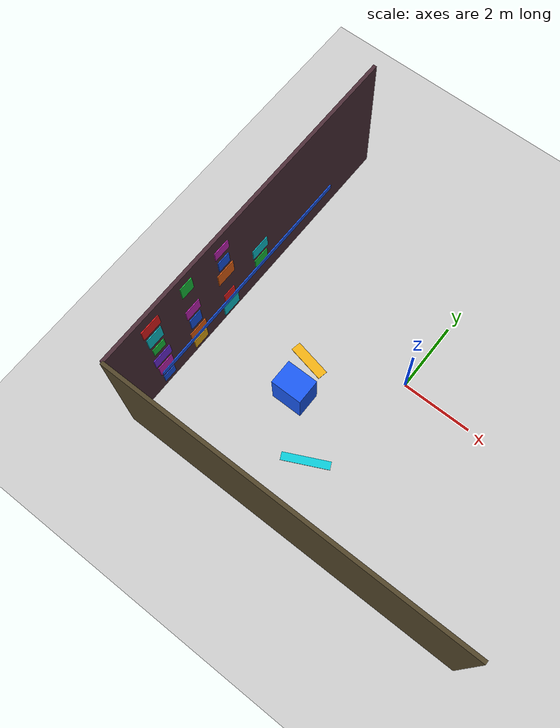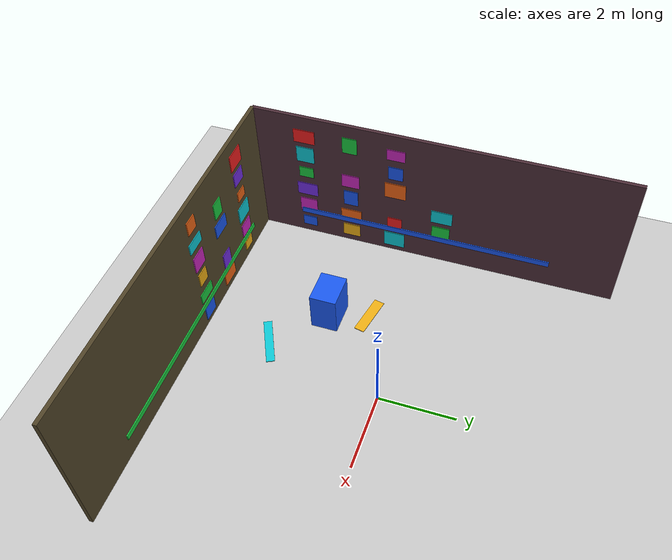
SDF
<sdf version="1.10">
 <world name="slam_room_office">
  <model name="ground_plane">
   <static>true</static>
   <link name="link">
    <collision name="collision">
     <geometry><plane><normal>0 0 1</normal><size>1 1</size></plane></geometry>
    </collision>
    <visual name="visual">
     <geometry><plane><normal>0 0 1</normal><size>500 500</size></plane></geometry>
     <material>
      <ambient>0.800000012 0.800000012 0.800000012 1</ambient>
      <diffuse>0.800000012 0.800000012 0.800000012 1</diffuse>
      <specular>0.800000012 0.800000012 0.800000012 1</specular>
     </material>
    </visual>
    <inertial>
     <mass>1</mass>
     <inertia><ixx>1</ixx><ixy>0</ixy><ixz>0</ixz><iyy>1</iyy><iyz>0</iyz><izz>1</izz></inertia>
    </inertial>
   </link>
  </model>
  <model name="slam_room_structure">
   <static>true</static>
   <link name="wall_x_neg">
    <pose>-5 0 2 0 0 0</pose>
    <collision name="collision"><geometry><box><size>0.10000000000000001 10 4</size></box></geometry></collision>
    <visual name="visual">
     <geometry><box><size>0.10000000000000001 10 4</size></box></geometry>
     <material>
      <ambient>0.300000012 0.180000007 0.219999999 1</ambient>
      <diffuse>0.300000012 0.180000007 0.219999999 1</diffuse>
     </material>
    </visual>
    <inertial>
     <mass>1</mass>
     <inertia><ixx>1</ixx><ixy>0</ixy><ixz>0</ixz><iyy>1</iyy><iyz>0</iyz><izz>1</izz></inertia>
    </inertial>
   </link>
   <link name="wall_y_neg">
    <pose>0 -5 2 0 0 0</pose>
    <collision name="collision"><geometry><box><size>10 0.10000000000000001 4</size></box></geometry></collision>
    <visual name="visual">
     <geometry><box><size>10 0.10000000000000001 4</size></box></geometry>
     <material>
      <ambient>0.319999993 0.270000011 0.159999996 1</ambient>
      <diffuse>0.319999993 0.270000011 0.159999996 1</diffuse>
     </material>
    </visual>
    <inertial>
     <mass>1</mass>
     <inertia><ixx>1</ixx><ixy>0</ixy><ixz>0</ixz><iyy>1</iyy><iyz>0</iyz><izz>1</izz></inertia>
    </inertial>
   </link>
   <link name="xwall_panel_36">
    <pose>-4.9400000000000004 -3.6000000000000001 0.40000000000000002 0 0 0</pose>
    <visual name="visual">
     <geometry><box><size>0.025000000000000001 0.40000000000000002 0.32000000000000001</size></box></geometry>
     <material>
      <ambient>0.100000001 0.349999994 0.949999988 1</ambient>
      <diffuse>0.100000001 0.349999994 0.949999988 1</diffuse>
     </material>
    </visual>
    <inertial>
     <mass>1</mass>
     <inertia><ixx>1</ixx><ixy>0</ixy><ixz>0</ixz><iyy>1</iyy><iyz>0</iyz><izz>1</izz></inertia>
    </inertial>
   </link>
   <link name="xwall_panel_37">
    <pose>-4.9400000000000004 -2.3500000000000001 0.40000000000000002 0 0 0</pose>
    <visual name="visual">
     <geometry><box><size>0.025000000000000001 0.48999999999999999 0.40000000000000002</size></box></geometry>
     <material>
      <ambient>0.949999988 0.699999988 0.0799999982 1</ambient>
      <diffuse>0.949999988 0.699999988 0.0799999982 1</diffuse>
     </material>
    </visual>
    <inertial>
     <mass>1</mass>
     <inertia><ixx>1</ixx><ixy>0</ixy><ixz>0</ixz><iyy>1</iyy><iyz>0</iyz><izz>1</izz></inertia>
    </inertial>
   </link>
   <link name="xwall_panel_38">
    <pose>-4.9400000000000004 -1.1000000000000001 0.40000000000000002 0 0 0</pose>
    <visual name="visual">
     <geometry><box><size>0.025000000000000001 0.57999999999999996 0.47999999999999998</size></box></geometry>
     <material>
      <ambient>0.0500000007 0.800000012 0.850000024 1</ambient>
      <diffuse>0.0500000007 0.800000012 0.850000024 1</diffuse>
     </material>
    </visual>
    <inertial>
     <mass>1</mass>
     <inertia><ixx>1</ixx><ixy>0</ixy><ixz>0</ixz><iyy>1</iyy><iyz>0</iyz><izz>1</izz></inertia>
    </inertial>
   </link>
   <link name="xwall_panel_42">
    <pose>-4.9400000000000004 -3.6000000000000001 1 0 0 0</pose>
    <visual name="visual">
     <geometry><box><size>0.025000000000000001 0.48999999999999999 0.47999999999999998</size></box></geometry>
     <material>
      <ambient>0.800000012 0.150000006 0.75 1</ambient>
      <diffuse>0.800000012 0.150000006 0.75 1</diffuse>
     </material>
    </visual>
    <inertial>
     <mass>1</mass>
     <inertia><ixx>1</ixx><ixy>0</ixy><ixz>0</ixz><iyy>1</iyy><iyz>0</iyz><izz>1</izz></inertia>
    </inertial>
   </link>
   <link name="xwall_panel_43">
    <pose>-4.9400000000000004 -2.3500000000000001 1 0 0 0</pose>
    <visual name="visual">
     <geometry><box><size>0.025000000000000001 0.57999999999999996 0.32000000000000001</size></box></geometry>
     <material>
      <ambient>0.949999988 0.400000006 0.0799999982 1</ambient>
      <diffuse>0.949999988 0.400000006 0.0799999982 1</diffuse>
     </material>
    </visual>
    <inertial>
     <mass>1</mass>
     <inertia><ixx>1</ixx><ixy>0</ixy><ixz>0</ixz><iyy>1</iyy><iyz>0</iyz><izz>1</izz></inertia>
    </inertial>
   </link>
   <link name="xwall_panel_44">
    <pose>-4.9400000000000004 -1.1000000000000001 1 0 0 0</pose>
    <visual name="visual">
     <geometry><box><size>0.025000000000000001 0.40000000000000002 0.40000000000000002</size></box></geometry>
     <material>
      <ambient>0.949999988 0.119999997 0.119999997 1</ambient>
      <diffuse>0.949999988 0.119999997 0.119999997 1</diffuse>
     </material>
    </visual>
    <inertial>
     <mass>1</mass>
     <inertia><ixx>1</ixx><ixy>0</ixy><ixz>0</ixz><iyy>1</iyy><iyz>0</iyz><izz>1</izz></inertia>
    </inertial>
   </link>
   <link name="xwall_panel_45">
    <pose>-4.9400000000000004 0.20000000000000001 1 0 0 0</pose>
    <visual name="visual">
     <geometry><box><size>0.025000000000000001 0.48999999999999999 0.47999999999999998</size></box></geometry>
     <material>
      <ambient>0.100000001 0.800000012 0.25 1</ambient>
      <diffuse>0.100000001 0.800000012 0.25 1</diffuse>
     </material>
    </visual>
    <inertial>
     <mass>1</mass>
     <inertia><ixx>1</ixx><ixy>0</ixy><ixz>0</ixz><iyy>1</iyy><iyz>0</iyz><izz>1</izz></inertia>
    </inertial>
   </link>
   <link name="xwall_panel_48">
    <pose>-4.9400000000000004 -3.6000000000000001 1.6000000000000001 0 0 0</pose>
    <visual name="visual">
     <geometry><box><size>0.025000000000000001 0.57999999999999996 0.40000000000000002</size></box></geometry>
     <material>
      <ambient>0.449999988 0.180000007 0.899999976 1</ambient>
      <diffuse>0.449999988 0.180000007 0.899999976 1</diffuse>
     </material>
    </visual>
    <inertial>
     <mass>1</mass>
     <inertia><ixx>1</ixx><ixy>0</ixy><ixz>0</ixz><iyy>1</iyy><iyz>0</iyz><izz>1</izz></inertia>
    </inertial>
   </link>
   <link name="xwall_panel_49">
    <pose>-4.9400000000000004 -2.3500000000000001 1.6000000000000001 0 0 0</pose>
    <visual name="visual">
     <geometry><box><size>0.025000000000000001 0.40000000000000002 0.47999999999999998</size></box></geometry>
     <material>
      <ambient>0.100000001 0.349999994 0.949999988 1</ambient>
      <diffuse>0.100000001 0.349999994 0.949999988 1</diffuse>
     </material>
    </visual>
    <inertial>
     <mass>1</mass>
     <inertia><ixx>1</ixx><ixy>0</ixy><ixz>0</ixz><iyy>1</iyy><iyz>0</iyz><izz>1</izz></inertia>
    </inertial>
   </link>
   <link name="xwall_panel_50">
    <pose>-4.9400000000000004 0.20000000000000001 1.6000000000000001 0 0 0</pose>
    <visual name="visual">
     <geometry><box><size>0.025000000000000001 0.57999999999999996 0.40000000000000002</size></box></geometry>
     <material>
      <ambient>0.0500000007 0.800000012 0.850000024 1</ambient>
      <diffuse>0.0500000007 0.800000012 0.850000024 1</diffuse>
     </material>
    </visual>
    <inertial>
     <mass>1</mass>
     <inertia><ixx>1</ixx><ixy>0</ixy><ixz>0</ixz><iyy>1</iyy><iyz>0</iyz><izz>1</izz></inertia>
    </inertial>
   </link>
   <link name="xwall_panel_54">
    <pose>-4.9400000000000004 -3.6000000000000001 2.2000000000000002 0 0 0</pose>
    <visual name="visual">
     <geometry><box><size>0.025000000000000001 0.40000000000000002 0.32000000000000001</size></box></geometry>
     <material>
      <ambient>0.100000001 0.800000012 0.25 1</ambient>
      <diffuse>0.100000001 0.800000012 0.25 1</diffuse>
     </material>
    </visual>
    <inertial>
     <mass>1</mass>
     <inertia><ixx>1</ixx><ixy>0</ixy><ixz>0</ixz><iyy>1</iyy><iyz>0</iyz><izz>1</izz></inertia>
    </inertial>
   </link>
   <link name="xwall_panel_55">
    <pose>-4.9400000000000004 -2.3500000000000001 2.2000000000000002 0 0 0</pose>
    <visual name="visual">
     <geometry><box><size>0.025000000000000001 0.48999999999999999 0.40000000000000002</size></box></geometry>
     <material>
      <ambient>0.800000012 0.150000006 0.75 1</ambient>
      <diffuse>0.800000012 0.150000006 0.75 1</diffuse>
     </material>
    </visual>
    <inertial>
     <mass>1</mass>
     <inertia><ixx>1</ixx><ixy>0</ixy><ixz>0</ixz><iyy>1</iyy><iyz>0</iyz><izz>1</izz></inertia>
    </inertial>
   </link>
   <link name="xwall_panel_56">
    <pose>-4.9400000000000004 -1.1000000000000001 2.2000000000000002 0 0 0</pose>
    <visual name="visual">
     <geometry><box><size>0.025000000000000001 0.57999999999999996 0.47999999999999998</size></box></geometry>
     <material>
      <ambient>0.949999988 0.400000006 0.0799999982 1</ambient>
      <diffuse>0.949999988 0.400000006 0.0799999982 1</diffuse>
     </material>
    </visual>
    <inertial>
     <mass>1</mass>
     <inertia><ixx>1</ixx><ixy>0</ixy><ixz>0</ixz><iyy>1</iyy><iyz>0</iyz><izz>1</izz></inertia>
    </inertial>
   </link>
   <link name="xwall_panel_60">
    <pose>-4.9400000000000004 -3.6000000000000001 2.7999999999999998 0 0 0</pose>
    <visual name="visual">
     <geometry><box><size>0.025000000000000001 0.48999999999999999 0.47999999999999998</size></box></geometry>
     <material>
      <ambient>0.0500000007 0.800000012 0.850000024 1</ambient>
      <diffuse>0.0500000007 0.800000012 0.850000024 1</diffuse>
     </material>
    </visual>
    <inertial>
     <mass>1</mass>
     <inertia><ixx>1</ixx><ixy>0</ixy><ixz>0</ixz><iyy>1</iyy><iyz>0</iyz><izz>1</izz></inertia>
    </inertial>
   </link>
   <link name="xwall_panel_61">
    <pose>-4.9400000000000004 -1.1000000000000001 2.7999999999999998 0 0 0</pose>
    <visual name="visual">
     <geometry><box><size>0.025000000000000001 0.40000000000000002 0.40000000000000002</size></box></geometry>
     <material>
      <ambient>0.100000001 0.349999994 0.949999988 1</ambient>
      <diffuse>0.100000001 0.349999994 0.949999988 1</diffuse>
     </material>
    </visual>
    <inertial>
     <mass>1</mass>
     <inertia><ixx>1</ixx><ixy>0</ixy><ixz>0</ixz><iyy>1</iyy><iyz>0</iyz><izz>1</izz></inertia>
    </inertial>
   </link>
   <link name="xwall_panel_66">
    <pose>-4.9400000000000004 -3.6000000000000001 3.3999999999999999 0 0 0</pose>
    <visual name="visual">
     <geometry><box><size>0.025000000000000001 0.57999999999999996 0.40000000000000002</size></box></geometry>
     <material>
      <ambient>0.949999988 0.119999997 0.119999997 1</ambient>
      <diffuse>0.949999988 0.119999997 0.119999997 1</diffuse>
     </material>
    </visual>
    <inertial>
     <mass>1</mass>
     <inertia><ixx>1</ixx><ixy>0</ixy><ixz>0</ixz><iyy>1</iyy><iyz>0</iyz><izz>1</izz></inertia>
    </inertial>
   </link>
   <link name="xwall_panel_67">
    <pose>-4.9400000000000004 -2.3500000000000001 3.3999999999999999 0 0 0</pose>
    <visual name="visual">
     <geometry><box><size>0.025000000000000001 0.40000000000000002 0.47999999999999998</size></box></geometry>
     <material>
      <ambient>0.100000001 0.800000012 0.25 1</ambient>
      <diffuse>0.100000001 0.800000012 0.25 1</diffuse>
     </material>
    </visual>
    <inertial>
     <mass>1</mass>
     <inertia><ixx>1</ixx><ixy>0</ixy><ixz>0</ixz><iyy>1</iyy><iyz>0</iyz><izz>1</izz></inertia>
    </inertial>
   </link>
   <link name="xwall_panel_68">
    <pose>-4.9400000000000004 -1.1000000000000001 3.3999999999999999 0 0 0</pose>
    <visual name="visual">
     <geometry><box><size>0.025000000000000001 0.48999999999999999 0.32000000000000001</size></box></geometry>
     <material>
      <ambient>0.800000012 0.150000006 0.75 1</ambient>
      <diffuse>0.800000012 0.150000006 0.75 1</diffuse>
     </material>
    </visual>
    <inertial>
     <mass>1</mass>
     <inertia><ixx>1</ixx><ixy>0</ixy><ixz>0</ixz><iyy>1</iyy><iyz>0</iyz><izz>1</izz></inertia>
    </inertial>
   </link>
   <link name="ywall_panel_106">
    <pose>-3.6000000000000001 -4.9400000000000004 0.40000000000000002 0 0 0</pose>
    <visual name="visual">
     <geometry><box><size>0.38 0.025000000000000001 0.29999999999999999</size></box></geometry>
     <material>
      <ambient>0.949999988 0.699999988 0.0799999982 1</ambient>
      <diffuse>0.949999988 0.699999988 0.0799999982 1</diffuse>
     </material>
    </visual>
    <inertial>
     <mass>1</mass>
     <inertia><ixx>1</ixx><ixy>0</ixy><ixz>0</ixz><iyy>1</iyy><iyz>0</iyz><izz>1</izz></inertia>
    </inertial>
   </link>
   <link name="ywall_panel_107">
    <pose>-2.3500000000000001 -4.9400000000000004 0.40000000000000002 0 0 0</pose>
    <visual name="visual">
     <geometry><box><size>0.57999999999999996 0.025000000000000001 0.39000000000000001</size></box></geometry>
     <material>
      <ambient>0.949999988 0.400000006 0.0799999982 1</ambient>
      <diffuse>0.949999988 0.400000006 0.0799999982 1</diffuse>
     </material>
    </visual>
    <inertial>
     <mass>1</mass>
     <inertia><ixx>1</ixx><ixy>0</ixy><ixz>0</ixz><iyy>1</iyy><iyz>0</iyz><izz>1</izz></inertia>
    </inertial>
   </link>
   <link name="ywall_panel_108">
    <pose>-1.1000000000000001 -4.9400000000000004 0.40000000000000002 0 0 0</pose>
    <visual name="visual">
     <geometry><box><size>0.47999999999999998 0.025000000000000001 0.47999999999999998</size></box></geometry>
     <material>
      <ambient>0.100000001 0.349999994 0.949999988 1</ambient>
      <diffuse>0.100000001 0.349999994 0.949999988 1</diffuse>
     </material>
    </visual>
    <inertial>
     <mass>1</mass>
     <inertia><ixx>1</ixx><ixy>0</ixy><ixz>0</ixz><iyy>1</iyy><iyz>0</iyz><izz>1</izz></inertia>
    </inertial>
   </link>
   <link name="ywall_panel_112">
    <pose>-3.6000000000000001 -4.9400000000000004 1 0 0 0</pose>
    <visual name="visual">
     <geometry><box><size>0.47999999999999998 0.025000000000000001 0.39000000000000001</size></box></geometry>
     <material>
      <ambient>0.800000012 0.150000006 0.75 1</ambient>
      <diffuse>0.800000012 0.150000006 0.75 1</diffuse>
     </material>
    </visual>
    <inertial>
     <mass>1</mass>
     <inertia><ixx>1</ixx><ixy>0</ixy><ixz>0</ixz><iyy>1</iyy><iyz>0</iyz><izz>1</izz></inertia>
    </inertial>
   </link>
   <link name="ywall_panel_113">
    <pose>-2.3500000000000001 -4.9400000000000004 1 0 0 0</pose>
    <visual name="visual">
     <geometry><box><size>0.38 0.025000000000000001 0.47999999999999998</size></box></geometry>
     <material>
      <ambient>0.449999988 0.180000007 0.899999976 1</ambient>
      <diffuse>0.449999988 0.180000007 0.899999976 1</diffuse>
     </material>
    </visual>
    <inertial>
     <mass>1</mass>
     <inertia><ixx>1</ixx><ixy>0</ixy><ixz>0</ixz><iyy>1</iyy><iyz>0</iyz><izz>1</izz></inertia>
    </inertial>
   </link>
   <link name="ywall_panel_114">
    <pose>-1.1000000000000001 -4.9400000000000004 1 0 0 0</pose>
    <visual name="visual">
     <geometry><box><size>0.57999999999999996 0.025000000000000001 0.29999999999999999</size></box></geometry>
     <material>
      <ambient>0.100000001 0.800000012 0.25 1</ambient>
      <diffuse>0.100000001 0.800000012 0.25 1</diffuse>
     </material>
    </visual>
    <inertial>
     <mass>1</mass>
     <inertia><ixx>1</ixx><ixy>0</ixy><ixz>0</ixz><iyy>1</iyy><iyz>0</iyz><izz>1</izz></inertia>
    </inertial>
   </link>
   <link name="ywall_panel_118">
    <pose>-3.6000000000000001 -4.9400000000000004 1.6000000000000001 0 0 0</pose>
    <visual name="visual">
     <geometry><box><size>0.57999999999999996 0.025000000000000001 0.47999999999999998</size></box></geometry>
     <material>
      <ambient>0.0500000007 0.800000012 0.850000024 1</ambient>
      <diffuse>0.0500000007 0.800000012 0.850000024 1</diffuse>
     </material>
    </visual>
    <inertial>
     <mass>1</mass>
     <inertia><ixx>1</ixx><ixy>0</ixy><ixz>0</ixz><iyy>1</iyy><iyz>0</iyz><izz>1</izz></inertia>
    </inertial>
   </link>
   <link name="ywall_panel_119">
    <pose>-1.1000000000000001 -4.9400000000000004 1.6000000000000001 0 0 0</pose>
    <visual name="visual">
     <geometry><box><size>0.38 0.025000000000000001 0.39000000000000001</size></box></geometry>
     <material>
      <ambient>0.949999988 0.699999988 0.0799999982 1</ambient>
      <diffuse>0.949999988 0.699999988 0.0799999982 1</diffuse>
     </material>
    </visual>
    <inertial>
     <mass>1</mass>
     <inertia><ixx>1</ixx><ixy>0</ixy><ixz>0</ixz><iyy>1</iyy><iyz>0</iyz><izz>1</izz></inertia>
    </inertial>
   </link>
   <link name="ywall_panel_124">
    <pose>-3.6000000000000001 -4.9400000000000004 2.2000000000000002 0 0 0</pose>
    <visual name="visual">
     <geometry><box><size>0.38 0.025000000000000001 0.29999999999999999</size></box></geometry>
     <material>
      <ambient>0.949999988 0.400000006 0.0799999982 1</ambient>
      <diffuse>0.949999988 0.400000006 0.0799999982 1</diffuse>
     </material>
    </visual>
    <inertial>
     <mass>1</mass>
     <inertia><ixx>1</ixx><ixy>0</ixy><ixz>0</ixz><iyy>1</iyy><iyz>0</iyz><izz>1</izz></inertia>
    </inertial>
   </link>
   <link name="ywall_panel_125">
    <pose>-2.3500000000000001 -4.9400000000000004 2.2000000000000002 0 0 0</pose>
    <visual name="visual">
     <geometry><box><size>0.57999999999999996 0.025000000000000001 0.39000000000000001</size></box></geometry>
     <material>
      <ambient>0.100000001 0.349999994 0.949999988 1</ambient>
      <diffuse>0.100000001 0.349999994 0.949999988 1</diffuse>
     </material>
    </visual>
    <inertial>
     <mass>1</mass>
     <inertia><ixx>1</ixx><ixy>0</ixy><ixz>0</ixz><iyy>1</iyy><iyz>0</iyz><izz>1</izz></inertia>
    </inertial>
   </link>
   <link name="ywall_panel_126">
    <pose>-1.1000000000000001 -4.9400000000000004 2.2000000000000002 0 0 0</pose>
    <visual name="visual">
     <geometry><box><size>0.47999999999999998 0.025000000000000001 0.47999999999999998</size></box></geometry>
     <material>
      <ambient>0.800000012 0.150000006 0.75 1</ambient>
      <diffuse>0.800000012 0.150000006 0.75 1</diffuse>
     </material>
    </visual>
    <inertial>
     <mass>1</mass>
     <inertia><ixx>1</ixx><ixy>0</ixy><ixz>0</ixz><iyy>1</iyy><iyz>0</iyz><izz>1</izz></inertia>
    </inertial>
   </link>
   <link name="ywall_panel_130">
    <pose>-3.6000000000000001 -4.9400000000000004 2.7999999999999998 0 0 0</pose>
    <visual name="visual">
     <geometry><box><size>0.47999999999999998 0.025000000000000001 0.39000000000000001</size></box></geometry>
     <material>
      <ambient>0.449999988 0.180000007 0.899999976 1</ambient>
      <diffuse>0.449999988 0.180000007 0.899999976 1</diffuse>
     </material>
    </visual>
    <inertial>
     <mass>1</mass>
     <inertia><ixx>1</ixx><ixy>0</ixy><ixz>0</ixz><iyy>1</iyy><iyz>0</iyz><izz>1</izz></inertia>
    </inertial>
   </link>
   <link name="ywall_panel_131">
    <pose>-2.3500000000000001 -4.9400000000000004 2.7999999999999998 0 0 0</pose>
    <visual name="visual">
     <geometry><box><size>0.38 0.025000000000000001 0.47999999999999998</size></box></geometry>
     <material>
      <ambient>0.100000001 0.800000012 0.25 1</ambient>
      <diffuse>0.100000001 0.800000012 0.25 1</diffuse>
     </material>
    </visual>
    <inertial>
     <mass>1</mass>
     <inertia><ixx>1</ixx><ixy>0</ixy><ixz>0</ixz><iyy>1</iyy><iyz>0</iyz><izz>1</izz></inertia>
    </inertial>
   </link>
   <link name="ywall_panel_132">
    <pose>-1.1000000000000001 -4.9400000000000004 2.7999999999999998 0 0 0</pose>
    <visual name="visual">
     <geometry><box><size>0.57999999999999996 0.025000000000000001 0.29999999999999999</size></box></geometry>
     <material>
      <ambient>0.0500000007 0.800000012 0.850000024 1</ambient>
      <diffuse>0.0500000007 0.800000012 0.850000024 1</diffuse>
     </material>
    </visual>
    <inertial>
     <mass>1</mass>
     <inertia><ixx>1</ixx><ixy>0</ixy><ixz>0</ixz><iyy>1</iyy><iyz>0</iyz><izz>1</izz></inertia>
    </inertial>
   </link>
   <link name="ywall_panel_136">
    <pose>-3.6000000000000001 -4.9400000000000004 3.3999999999999999 0 0 0</pose>
    <visual name="visual">
     <geometry><box><size>0.57999999999999996 0.025000000000000001 0.47999999999999998</size></box></geometry>
     <material>
      <ambient>0.949999988 0.119999997 0.119999997 1</ambient>
      <diffuse>0.949999988 0.119999997 0.119999997 1</diffuse>
     </material>
    </visual>
    <inertial>
     <mass>1</mass>
     <inertia><ixx>1</ixx><ixy>0</ixy><ixz>0</ixz><iyy>1</iyy><iyz>0</iyz><izz>1</izz></inertia>
    </inertial>
   </link>
   <link name="ywall_panel_137">
    <pose>-1.1000000000000001 -4.9400000000000004 3.3999999999999999 0 0 0</pose>
    <visual name="visual">
     <geometry><box><size>0.38 0.025000000000000001 0.39000000000000001</size></box></geometry>
     <material>
      <ambient>0.949999988 0.400000006 0.0799999982 1</ambient>
      <diffuse>0.949999988 0.400000006 0.0799999982 1</diffuse>
     </material>
    </visual>
    <inertial>
     <mass>1</mass>
     <inertia><ixx>1</ixx><ixy>0</ixy><ixz>0</ixz><iyy>1</iyy><iyz>0</iyz><izz>1</izz></inertia>
    </inertial>
   </link>
   <link name="stripe_xn_1">
    <pose>-4.9199999999999999 -0.29999999999999999 0.80000000000000004 0 0 0</pose>
    <visual name="visual">
     <geometry><box><size>0.029999999999999999 7 0.16</size></box></geometry>
     <material>
      <ambient>0.100000001 0.349999994 0.949999988 1</ambient>
      <diffuse>0.100000001 0.349999994 0.949999988 1</diffuse>
     </material>
    </visual>
    <inertial>
     <mass>1</mass>
     <inertia><ixx>1</ixx><ixy>0</ixy><ixz>0</ixz><iyy>1</iyy><iyz>0</iyz><izz>1</izz></inertia>
    </inertial>
   </link>
   <link name="stripe_yn_1">
    <pose>-0.40000000000000002 -4.9199999999999999 0.69999999999999996 0 0 0</pose>
    <visual name="visual">
     <geometry><box><size>7.2000000000000002 0.029999999999999999 0.14000000000000001</size></box></geometry>
     <material>
      <ambient>0.100000001 0.800000012 0.25 1</ambient>
      <diffuse>0.100000001 0.800000012 0.25 1</diffuse>
     </material>
    </visual>
    <inertial>
     <mass>1</mass>
     <inertia><ixx>1</ixx><ixy>0</ixy><ixz>0</ixz><iyy>1</iyy><iyz>0</iyz><izz>1</izz></inertia>
    </inertial>
   </link>
   <link name="floor_4">
    <pose>-2.3999999999999999 -1 0.012 0 0 -0.20000000000000009</pose>
    <visual name="visual">
     <geometry><box><size>1.1000000000000001 0.28000000000000003 0.02</size></box></geometry>
     <material>
      <ambient>0.949999988 0.699999988 0.0799999982 1</ambient>
      <diffuse>0.949999988 0.699999988 0.0799999982 1</diffuse>
     </material>
    </visual>
    <inertial>
     <mass>1</mass>
     <inertia><ixx>1</ixx><ixy>0</ixy><ixz>0</ixz><iyy>1</iyy><iyz>0</iyz><izz>1</izz></inertia>
    </inertial>
   </link>
   <link name="floor_6">
    <pose>-0.80000000000000004 -3.2000000000000002 0.012 0 0 0.45000000000000018</pose>
    <visual name="visual">
     <geometry><box><size>1.3 0.22 0.02</size></box></geometry>
     <material>
      <ambient>0.0500000007 0.800000012 0.850000024 1</ambient>
      <diffuse>0.0500000007 0.800000012 0.850000024 1</diffuse>
     </material>
    </visual>
    <inertial>
     <mass>1</mass>
     <inertia><ixx>1</ixx><ixy>0</ixy><ixz>0</ixz><iyy>1</iyy><iyz>0</iyz><izz>1</izz></inertia>
    </inertial>
   </link>
   <link name="box_a">
    <pose>-2.1000000000000001 -2 0.55000000000000004 0 0 0</pose>
    <collision name="collision">
     <geometry><box><size>0.90000000000000002 0.69999999999999996 1.1000000000000001</size></box></geometry>
    </collision>
    <visual name="visual">
     <geometry><box><size>0.90000000000000002 0.69999999999999996 1.1000000000000001</size></box></geometry>
     <material>
      <ambient>0.100000001 0.349999994 0.949999988 1</ambient>
      <diffuse>0.100000001 0.349999994 0.949999988 1</diffuse>
     </material>
    </visual>
    <inertial>
     <mass>1</mass>
     <inertia><ixx>1</ixx><ixy>0</ixy><ixz>0</ixz><iyy>1</iyy><iyz>0</iyz><izz>1</izz></inertia>
    </inertial>
   </link>
  </model>
 </world>
</sdf>
